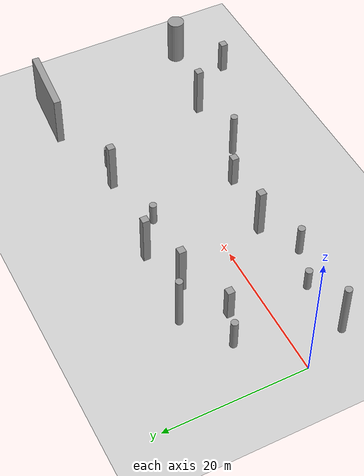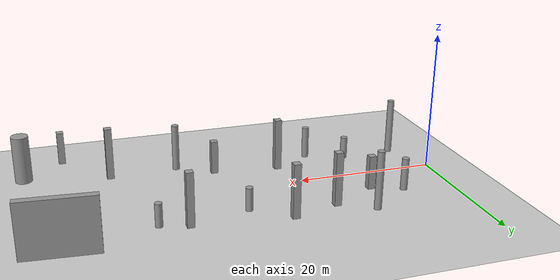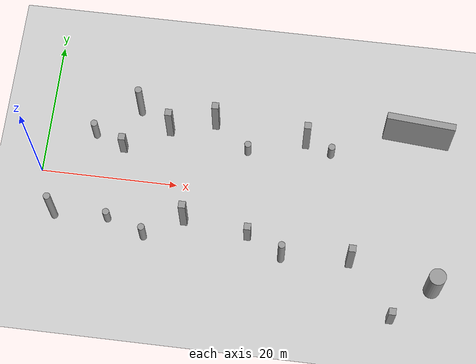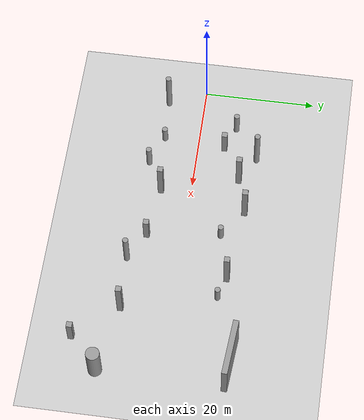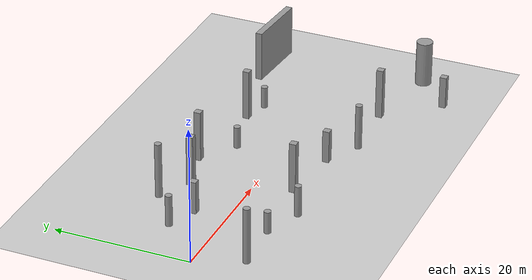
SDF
<sdf version="1.6">
 <world name="default">
  <light name="sun" type="directional">
   <pose>0 0 10 0 -0 0</pose>
   <diffuse>0.8 0.8 0.8 1</diffuse>
   <specular>0.2 0.2 0.2 1</specular>
   <attenuation>
    <range>1000</range>
    <constant>0.9</constant>
    <linear>0.01</linear>
    <quadratic>0.001</quadratic>
   </attenuation>
   <direction>-0.5 0.1 -0.9</direction>
  </light>
  <model name="ground_plane">
   <static>1</static>
   <link name="link">
    <collision name="collision">
     <geometry><plane><normal>0 0 1</normal><size>100 100</size></plane></geometry>
     <surface>
      <contact><collide_bitmask>65535</collide_bitmask></contact>
      <friction><ode><mu>100</mu><mu2>50</mu2></ode></friction>
     </surface>
    </collision>
    <visual name="visual">
     <cast_shadows>0</cast_shadows>
     <geometry><plane><normal>0 0 1</normal><size>100 100</size></plane></geometry>
     <material>
      <script><uri>file://media/materials/scripts/gazebo.material</uri><name>Gazebo/Grey</name></script>
     </material>
    </visual>
   </link>
  </model>
  <gravity>0 0 -9.8</gravity>
  <magnetic_field>6e-06 2.3e-05 -4.2e-05</magnetic_field>
  <atmosphere type="adiabatic"/>
  <physics name="default_physics" default="0" type="ode">
   <max_step_size>0.001</max_step_size>
   <real_time_factor>1</real_time_factor>
   <real_time_update_rate>1000</real_time_update_rate>
  </physics>
  <scene><ambient>0.4 0.4 0.4 1</ambient><background>0.7 0.7 0.7 1</background><shadows>1</shadows></scene>
  <spherical_coordinates>
   <surface_model>EARTH_WGS84</surface_model>
   <latitude_deg>0</latitude_deg>
   <longitude_deg>0</longitude_deg>
   <elevation>0</elevation>
   <heading_deg>0</heading_deg>
  </spherical_coordinates>
  <model name="unit_cylinder">
   <pose>7.1705 6.49764 2.34349 0 -0 -0.000317</pose>
   <link name="link">
    <inertial>
     <mass>1</mass>
     <inertia><ixx>0.145833</ixx><ixy>0</ixy><ixz>0</ixz><iyy>0.145833</iyy><iyz>0</iyz><izz>0.125</izz></inertia>
    </inertial>
    <collision name="collision">
     <geometry><cylinder><radius>0.5</radius><length>4.68699</length></cylinder></geometry>
    </collision>
    <visual name="visual">
     <geometry><cylinder><radius>0.5</radius><length>4.68699</length></cylinder></geometry>
     <material>
      <script><name>Gazebo/Grey</name><uri>file://media/materials/scripts/gazebo.material</uri></script>
     </material>
    </visual>
   </link>
  </model>
  <model name="unit_box">
   <pose>11.5202 4.78934 2.45747 -0 -0 -0.001495</pose>
   <link name="link">
    <inertial>
     <mass>1</mass>
     <inertia>
      <ixx>0.166667</ixx>
      <ixy>0</ixy>
      <ixz>0</ixz>
      <iyy>0.166667</iyy>
      <iyz>0</iyz>
      <izz>0.166667</izz>
     </inertia>
    </inertial>
    <collision name="collision"><geometry><box><size>1 1 4.91494</size></box></geometry></collision>
    <visual name="visual">
     <geometry><box><size>1 1 4.91494</size></box></geometry>
     <material>
      <script><name>Gazebo/Grey</name><uri>file://media/materials/scripts/gazebo.material</uri></script>
     </material>
    </visual>
   </link>
  </model>
  <model name="unit_box_clone">
   <pose>18.0138 8.2259 3.82427 1e-06 -0 -0.002577</pose>
   <link name="link">
    <inertial>
     <mass>1</mass>
     <inertia>
      <ixx>0.166667</ixx>
      <ixy>0</ixy>
      <ixz>0</ixz>
      <iyy>0.166667</iyy>
      <iyz>0</iyz>
      <izz>0.166667</izz>
     </inertia>
    </inertial>
    <collision name="collision"><geometry><box><size>1 1 7.64854</size></box></geometry></collision>
    <visual name="visual">
     <geometry><box><size>1 1 7.64854</size></box></geometry>
     <material>
      <script><name>Gazebo/Grey</name><uri>file://media/materials/scripts/gazebo.material</uri></script>
     </material>
    </visual>
   </link>
  </model>
  <model name="unit_cylinder_clone">
   <pose>16.3186 -8.41104 2.34349 0 -0 -0.000207</pose>
   <link name="link">
    <inertial>
     <mass>1</mass>
     <inertia><ixx>0.145833</ixx><ixy>0</ixy><ixz>0</ixz><iyy>0.145833</iyy><iyz>0</iyz><izz>0.125</izz></inertia>
    </inertial>
    <collision name="collision">
     <geometry><cylinder><radius>0.5</radius><length>4.68699</length></cylinder></geometry>
    </collision>
    <visual name="visual">
     <geometry><cylinder><radius>0.5</radius><length>4.68699</length></cylinder></geometry>
     <material>
      <script><name>Gazebo/Grey</name><uri>file://media/materials/scripts/gazebo.material</uri></script>
     </material>
    </visual>
   </link>
  </model>
  <model name="unit_box_clone_0">
   <pose>21.8706 -5.44097 3.82427 0 0 -0.000917</pose>
   <link name="link">
    <inertial>
     <mass>1</mass>
     <inertia>
      <ixx>0.166667</ixx>
      <ixy>0</ixy>
      <ixz>0</ixz>
      <iyy>0.166667</iyy>
      <iyz>0</iyz>
      <izz>0.166667</izz>
     </inertia>
    </inertial>
    <collision name="collision"><geometry><box><size>1 1 7.64854</size></box></geometry></collision>
    <visual name="visual">
     <geometry><box><size>1 1 7.64854</size></box></geometry>
     <material>
      <script><name>Gazebo/Grey</name><uri>file://media/materials/scripts/gazebo.material</uri></script>
     </material>
    </visual>
   </link>
  </model>
  <model name="unit_cylinder_0">
   <pose>10.7896 -6.31461 1.65524 0 -0 -0.000154</pose>
   <link name="link">
    <inertial>
     <mass>1</mass>
     <inertia><ixx>0.145833</ixx><ixy>0</ixy><ixz>0</ixz><iyy>0.145833</iyy><iyz>0</iyz><izz>0.125</izz></inertia>
    </inertial>
    <collision name="collision">
     <geometry><cylinder><radius>0.5</radius><length>3.31049</length></cylinder></geometry>
    </collision>
    <visual name="visual">
     <geometry><cylinder><radius>0.5</radius><length>3.31049</length></cylinder></geometry>
     <material>
      <script><name>Gazebo/Grey</name><uri>file://media/materials/scripts/gazebo.material</uri></script>
     </material>
    </visual>
   </link>
  </model>
  <model name="unit_cylinder_0_clone">
   <pose>29.7254 6.4295 1.65524 0 -0 -0.000148</pose>
   <link name="link">
    <inertial>
     <mass>1</mass>
     <inertia><ixx>0.145833</ixx><ixy>0</ixy><ixz>0</ixz><iyy>0.145833</iyy><iyz>0</iyz><izz>0.125</izz></inertia>
    </inertial>
    <collision name="collision">
     <geometry><cylinder><radius>0.5</radius><length>3.31049</length></cylinder></geometry>
    </collision>
    <visual name="visual">
     <geometry><cylinder><radius>0.5</radius><length>3.31049</length></cylinder></geometry>
     <material>
      <script><name>Gazebo/Grey</name><uri>file://media/materials/scripts/gazebo.material</uri></script>
     </material>
    </visual>
   </link>
  </model>
  <model name="unit_box_clone_clone">
   <pose>24.5722 10.0712 3.82427 0 0 -0.002374</pose>
   <link name="link">
    <inertial>
     <mass>1</mass>
     <inertia>
      <ixx>0.166667</ixx>
      <ixy>0</ixy>
      <ixz>0</ixz>
      <iyy>0.166667</iyy>
      <iyz>0</iyz>
      <izz>0.166667</izz>
     </inertia>
    </inertial>
    <collision name="collision"><geometry><box><size>1 1 7.64854</size></box></geometry></collision>
    <visual name="visual">
     <geometry><box><size>1 1 7.64854</size></box></geometry>
     <material>
      <script><name>Gazebo/Grey</name><uri>file://media/materials/scripts/gazebo.material</uri></script>
     </material>
    </visual>
   </link>
  </model>
  <model name="unit_box_clone_1">
   <pose>31.2284 -6.63747 2.45747 0 0 -0.002008</pose>
   <link name="link">
    <inertial>
     <mass>1</mass>
     <inertia>
      <ixx>0.166667</ixx>
      <ixy>0</ixy>
      <ixz>0</ixz>
      <iyy>0.166667</iyy>
      <iyz>0</iyz>
      <izz>0.166667</izz>
     </inertia>
    </inertial>
    <collision name="collision"><geometry><box><size>1 1 4.91494</size></box></geometry></collision>
    <visual name="visual">
     <geometry><box><size>1 1 4.91494</size></box></geometry>
     <material>
      <script><name>Gazebo/Grey</name><uri>file://media/materials/scripts/gazebo.material</uri></script>
     </material>
    </visual>
   </link>
  </model>
  <model name="unit_cylinder_1">
   <pose>3.03652 -6.66575 4.15633 0 -0 0.002572</pose>
   <link name="link">
    <inertial>
     <mass>1</mass>
     <inertia><ixx>0.145833</ixx><ixy>0</ixy><ixz>0</ixz><iyy>0.145833</iyy><iyz>0</iyz><izz>0.125</izz></inertia>
    </inertial>
    <collision name="collision">
     <geometry><cylinder><radius>0.5</radius><length>8.31266</length></cylinder></geometry>
    </collision>
    <visual name="visual">
     <geometry><cylinder><radius>0.5</radius><length>8.31266</length></cylinder></geometry>
     <material>
      <script><name>Gazebo/Grey</name><uri>file://media/materials/scripts/gazebo.material</uri></script>
     </material>
    </visual>
   </link>
  </model>
  <model name="unit_cylinder_1_clone">
   <pose>13.2922 10.9133 4.15633 0 -0 0.002418</pose>
   <link name="link">
    <inertial>
     <mass>1</mass>
     <inertia><ixx>0.145833</ixx><ixy>0</ixy><ixz>0</ixz><iyy>0.145833</iyy><iyz>0</iyz><izz>0.125</izz></inertia>
    </inertial>
    <collision name="collision">
     <geometry><cylinder><radius>0.5</radius><length>8.31267</length></cylinder></geometry>
    </collision>
    <visual name="visual">
     <geometry><cylinder><radius>0.5</radius><length>8.31267</length></cylinder></geometry>
     <material>
      <script><name>Gazebo/Grey</name><uri>file://media/materials/scripts/gazebo.material</uri></script>
     </material>
    </visual>
   </link>
  </model>
  <model name="unit_cylinder_0_clone_clone">
   <pose>36.3643 -9.39018 3.43701 0 -0 0.001534</pose>
   <link name="link">
    <inertial>
     <mass>1</mass>
     <inertia><ixx>0.145833</ixx><ixy>0</ixy><ixz>0</ixz><iyy>0.145833</iyy><iyz>0</iyz><izz>0.125</izz></inertia>
    </inertial>
    <collision name="collision">
     <geometry><cylinder><radius>0.5</radius><length>6.87403</length></cylinder></geometry>
    </collision>
    <visual name="visual">
     <geometry><cylinder><radius>0.5</radius><length>6.87403</length></cylinder></geometry>
     <material>
      <script><name>Gazebo/Grey</name><uri>file://media/materials/scripts/gazebo.material</uri></script>
     </material>
    </visual>
   </link>
  </model>
  <model name="unit_box_clone_0_clone">
   <pose>38.1336 8.57051 3.82427 0 0 -0.001726</pose>
   <link name="link">
    <inertial>
     <mass>1</mass>
     <inertia>
      <ixx>0.166667</ixx>
      <ixy>0</ixy>
      <ixz>0</ixz>
      <iyy>0.166667</iyy>
      <iyz>0</iyz>
      <izz>0.166667</izz>
     </inertia>
    </inertial>
    <collision name="collision"><geometry><box><size>1 1 7.64854</size></box></geometry></collision>
    <visual name="visual">
     <geometry><box><size>1 1 7.64854</size></box></geometry>
     <material>
      <script><name>Gazebo/Grey</name><uri>file://media/materials/scripts/gazebo.material</uri></script>
     </material>
    </visual>
   </link>
  </model>
  <model name="unit_box_clone_clone_0">
   <pose>46.1063 -8.96841 3.82427 1e-06 0 -0.001293</pose>
   <link name="link">
    <inertial>
     <mass>1</mass>
     <inertia>
      <ixx>0.166667</ixx>
      <ixy>0</ixy>
      <ixz>0</ixz>
      <iyy>0.166667</iyy>
      <iyz>0</iyz>
      <izz>0.166667</izz>
     </inertia>
    </inertial>
    <collision name="collision"><geometry><box><size>1 1 7.64854</size></box></geometry></collision>
    <visual name="visual">
     <geometry><box><size>1 1 7.64854</size></box></geometry>
     <material>
      <script><name>Gazebo/Grey</name><uri>file://media/materials/scripts/gazebo.material</uri></script>
     </material>
    </visual>
   </link>
  </model>
  <model name="unit_cylinder_0_clone_clone_0">
   <pose>41.9422 7.44779 1.65524 0 -0 -0.000147</pose>
   <link name="link">
    <inertial>
     <mass>1</mass>
     <inertia><ixx>0.145833</ixx><ixy>0</ixy><ixz>0</ixz><iyy>0.145833</iyy><iyz>0</iyz><izz>0.125</izz></inertia>
    </inertial>
    <collision name="collision">
     <geometry><cylinder><radius>0.5</radius><length>3.31049</length></cylinder></geometry>
    </collision>
    <visual name="visual">
     <geometry><cylinder><radius>0.5</radius><length>3.31049</length></cylinder></geometry>
     <material>
      <script><name>Gazebo/Grey</name><uri>file://media/materials/scripts/gazebo.material</uri></script>
     </material>
    </visual>
   </link>
  </model>
  <model name="unit_box_clone_0_clone_clone">
   <pose>54.2295 11.147 3.8217 4.2e-05 -0.000526 -0.078866</pose>
   <link name="link">
    <inertial>
     <mass>1</mass>
     <inertia>
      <ixx>0.166667</ixx>
      <ixy>0</ixy>
      <ixz>0</ixz>
      <iyy>0.166667</iyy>
      <iyz>0</iyz>
      <izz>0.166667</izz>
     </inertia>
    </inertial>
    <collision name="collision"><geometry><box><size>9.88085 1 7.64854</size></box></geometry></collision>
    <visual name="visual">
     <geometry><box><size>9.88085 1 7.64854</size></box></geometry>
     <material>
      <script><name>Gazebo/Grey</name><uri>file://media/materials/scripts/gazebo.material</uri></script>
     </material>
    </visual>
   </link>
  </model>
  <model name="unit_box_clone_1_clone">
   <pose>52.5147 -16.4765 2.45747 -0 -0 -0.001996</pose>
   <link name="link">
    <inertial>
     <mass>1</mass>
     <inertia>
      <ixx>0.166667</ixx>
      <ixy>0</ixy>
      <ixz>0</ixz>
      <iyy>0.166667</iyy>
      <iyz>0</iyz>
      <izz>0.166667</izz>
     </inertia>
    </inertial>
    <collision name="collision"><geometry><box><size>1 1 4.91494</size></box></geometry></collision>
    <visual name="visual">
     <geometry><box><size>1 1 4.91494</size></box></geometry>
     <material>
      <script><name>Gazebo/Grey</name><uri>file://media/materials/scripts/gazebo.material</uri></script>
     </material>
    </visual>
   </link>
  </model>
  <model name="unit_cylinder_0_clone_clone_clone">
   <pose>58.1412 -11.4026 3.43701 0 -0 0.000852</pose>
   <link name="link">
    <inertial>
     <mass>1</mass>
     <inertia><ixx>0.145833</ixx><ixy>0</ixy><ixz>0</ixz><iyy>0.145833</iyy><iyz>0</iyz><izz>0.125</izz></inertia>
    </inertial>
    <collision name="collision">
     <geometry><cylinder><radius>1.20398</radius><length>6.87403</length></cylinder></geometry>
    </collision>
    <visual name="visual">
     <geometry><cylinder><radius>1.20398</radius><length>6.87403</length></cylinder></geometry>
     <material>
      <script><name>Gazebo/Grey</name><uri>file://media/materials/scripts/gazebo.material</uri></script>
     </material>
    </visual>
   </link>
  </model>
 </world>
</sdf>
